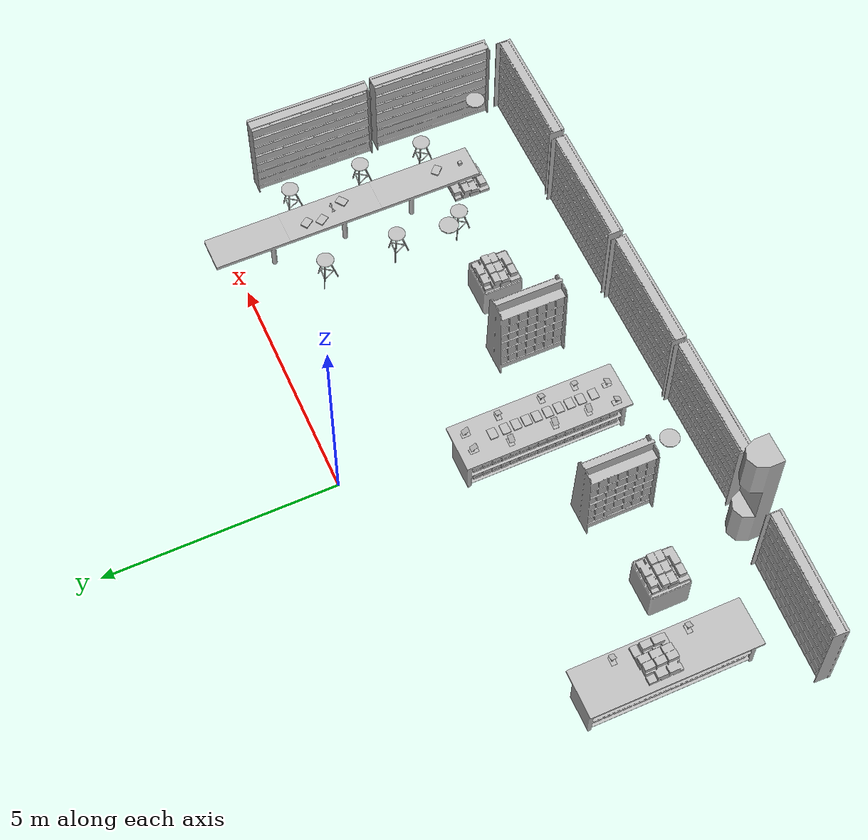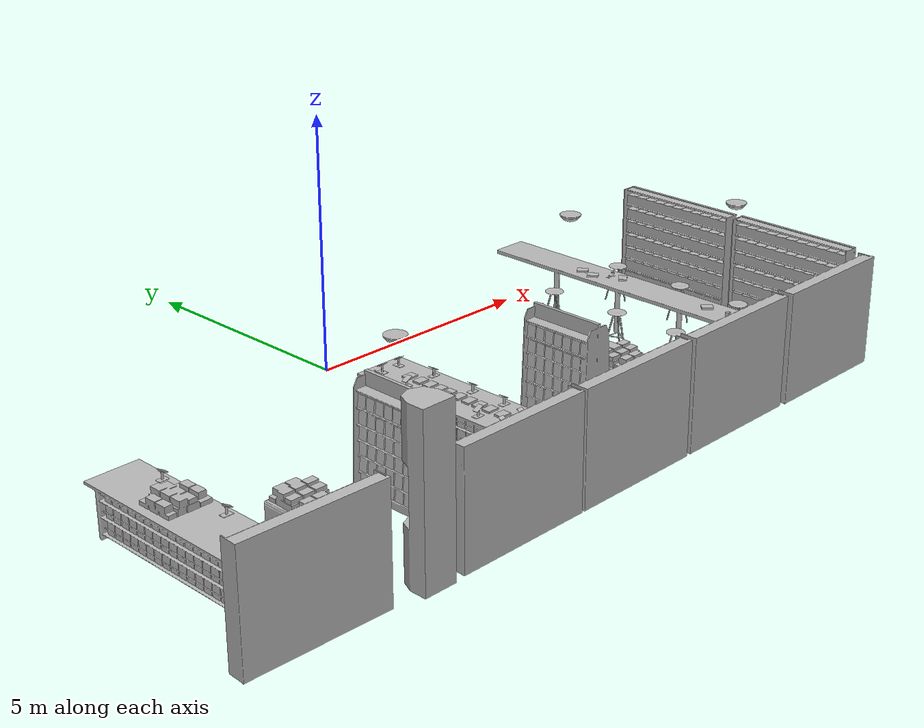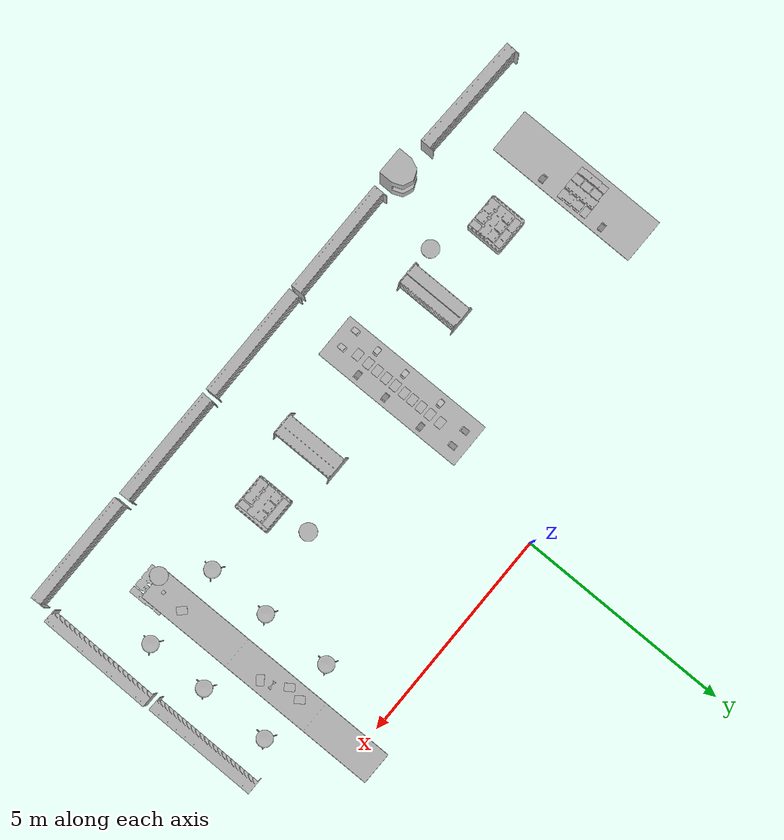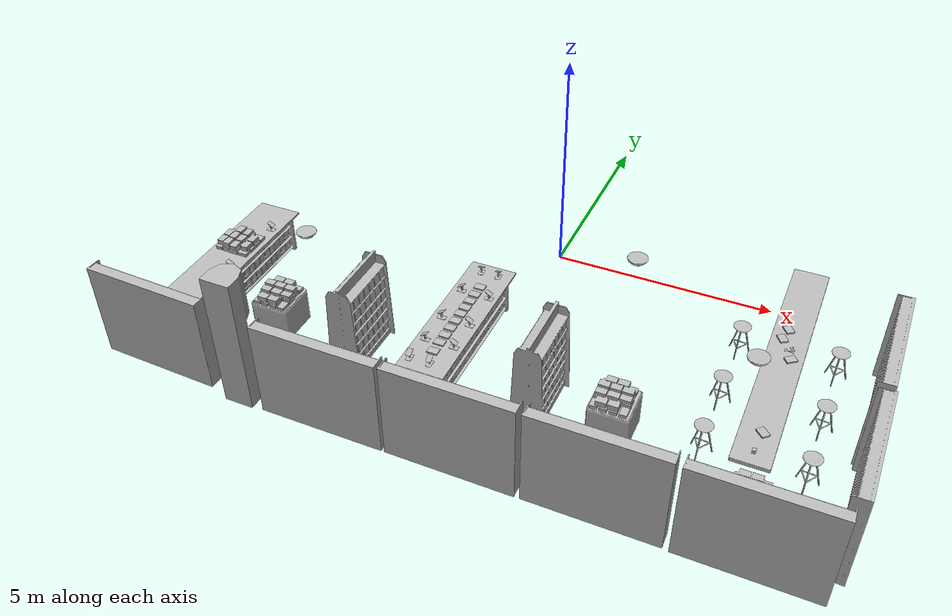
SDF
<sdf version="1.6">
 <world name="default">
  <model name="Bicycle_01_001">
   <include><uri>model://aws_robomaker_retail_Bicycle_01</uri></include>
   <pose>5.681248 -2.242451 0.931246 0.000002 -0.000024 0</pose>
  </model>
  <model name="BookE_01_001">
   <include><uri>model://aws_robomaker_retail_BookE_01</uri></include>
   <pose>5.476534 -1.932532 0.948933 0.000004 0.000001 -2.543521</pose>
  </model>
  <model name="BookE_01_004">
   <include><uri>model://aws_robomaker_retail_BookE_01</uri></include>
   <pose>5.677231 -4.649203 0.946394 0.000100 0.000006 -2.355752</pose>
  </model>
  <model name="BookE_01_005">
   <include><uri>model://aws_robomaker_retail_BookE_01</uri></include>
   <pose>5.538150 -1.610317 0.948933 0 0 -2.526901</pose>
  </model>
  <model name="BookE_01_011">
   <include><uri>model://aws_robomaker_retail_BookE_01</uri></include>
   <pose>5.749231 -2.492018 0.948933 0.000002 0.000001 2.223394</pose>
  </model>
  <model name="BookE_01_020">
   <include><uri>model://aws_robomaker_retail_BookE_01</uri></include>
   <pose>-0.694312 -3.530823 1.053825 0.000004 -0.000004 -1.573382</pose>
  </model>
  <model name="BookE_01_021">
   <include><uri>model://aws_robomaker_retail_BookE_01</uri></include>
   <pose>-0.694312 -3.760511 1.053825 0.000004 -0.000004 -1.573382</pose>
  </model>
  <model name="BookE_01_022">
   <include><uri>model://aws_robomaker_retail_BookE_01</uri></include>
   <pose>-0.694312 -3.980472 1.053825 0.000004 -0.000004 -1.573382</pose>
  </model>
  <model name="BookE_01_023">
   <include><uri>model://aws_robomaker_retail_BookE_01</uri></include>
   <pose>-0.694312 -4.221891 1.053825 0.000004 -0.000004 -1.573382</pose>
  </model>
  <model name="BookE_01_024">
   <include><uri>model://aws_robomaker_retail_BookE_01</uri></include>
   <pose>-0.694312 -4.461891 1.053825 0.000004 -0.000004 -1.573382</pose>
  </model>
  <model name="BookE_01_025">
   <include><uri>model://aws_robomaker_retail_BookE_01</uri></include>
   <pose>-0.694312 -4.701891 1.053825 0.000004 -0.000004 -1.573382</pose>
  </model>
  <model name="BookE_01_026">
   <include><uri>model://aws_robomaker_retail_BookE_01</uri></include>
   <pose>-0.694312 -4.941891 1.053825 0.000004 -0.000004 -1.573382</pose>
  </model>
  <model name="BookE_01_027">
   <include><uri>model://aws_robomaker_retail_BookE_01</uri></include>
   <pose>-0.694312 -5.221891 1.053825 0.000004 -0.000004 -1.573382</pose>
  </model>
  <model name="BookE_01_028">
   <include><uri>model://aws_robomaker_retail_BookE_01</uri></include>
   <pose>-0.694312 -3.291891 1.053825 0.000004 -0.000004 -1.573382</pose>
  </model>
  <model name="BookE_01_029">
   <include><uri>model://aws_robomaker_retail_BookE_01</uri></include>
   <pose>-0.694312 -3.021891 1.053825 0.000004 -0.000004 -1.573382</pose>
  </model>
  <model name="BookD_01_001">
   <include><uri>model://aws_robomaker_retail_BookD_01</uri></include>
   <pose>5.720048 -5.365876 0.022179 0.003452 -0.000001 0.000652</pose>
  </model>
  <model name="BookF_01_002">
   <include><uri>model://aws_robomaker_retail_BookF_01</uri></include>
   <pose>2.902979 -4.760748 0.75826 0.003450 0.000006 -0.002250</pose>
  </model>
  <model name="BookF_01_003">
   <include><uri>model://aws_robomaker_retail_BookF_01</uri></include>
   <pose>-4.604931 -4.772141 0.804483 0.000004 0 0</pose>
  </model>
  <model name="BookD_01_003">
   <include><uri>model://aws_robomaker_retail_BookD_01</uri></include>
   <pose>-6.235609 -3.785181 1.038157 0.000008 0 1.580378</pose>
  </model>
  <model name="BookshelfA_01_002">
   <include><uri>model://aws_robomaker_retail_BookshelfA_01</uri></include>
   <pose>1.405153 -4.761649 0.003411 0 0 0</pose>
  </model>
  <model name="BookshelfA_01_004">
   <include><uri>model://aws_robomaker_retail_BookshelfA_01</uri></include>
   <pose>-2.608578 -4.761649 0.003411 0 0 0</pose>
  </model>
  <model name="BookshelfB_01_001">
   <include><uri>model://aws_robomaker_retail_BookshelfB_01</uri></include>
   <pose>-6.189675 -6.785646 -0.008942 0.003533 0.000121 -0.032073</pose>
  </model>
  <model name="BookshelfB_01_002">
   <include><uri>model://aws_robomaker_retail_BookshelfB_01</uri></include>
   <pose>-2.209411 -6.971459 0.017074 -0.000128 -0.000252 0.000364</pose>
  </model>
  <model name="BookshelfB_01_003">
   <include><uri>model://aws_robomaker_retail_BookshelfB_01</uri></include>
   <pose>0.522246 -6.971500 0.017947 -0.003292 0.000000 0.000000</pose>
  </model>
  <model name="BookshelfB_01_004">
   <include><uri>model://aws_robomaker_retail_BookshelfB_01</uri></include>
   <pose>3.293386 -6.963665 0.017383 0.000008 -0.000002 0.000000</pose>
  </model>
  <model name="BookshelfB_01_005">
   <include><uri>model://aws_robomaker_retail_BookshelfB_01</uri></include>
   <pose>6.080380 -6.987659 0.017409 0.000174 0.000004 0.000000</pose>
  </model>
  <model name="BookshelfB_01_006">
   <include><uri>model://aws_robomaker_retail_BookshelfB_01</uri></include>
   <pose>7.478331 -5.298296 0.017443 -0.001974 -0.000211 1.554057</pose>
  </model>
  <model name="BookshelfB_01_007">
   <include><uri>model://aws_robomaker_retail_BookshelfB_01</uri></include>
   <pose>7.478331 -2.510651 0.017402 0.000010 -0.000013 1.562068</pose>
  </model>
  <model name="BookshelfC_01_002">
   <include><uri>model://aws_robomaker_retail_BookshelfC_01</uri></include>
   <pose>2.915449 -4.761712 -0.003455 0.003452 0 0.000014</pose>
  </model>
  <model name="BookshelfC_01_004">
   <include><uri>model://aws_robomaker_retail_BookshelfC_01</uri></include>
   <pose>-4.614360 -4.761649 0.045908 0 0 0</pose>
  </model>
  <model name="ChairB_01_002">
   <include><uri>model://aws_robomaker_retail_ChairB_01</uri></include>
   <pose>6.6439554 -1.621987 0.0220513 0 0.006174 0.000088</pose>
  </model>
  <model name="ChairB_01_003">
   <include><uri>model://aws_robomaker_retail_ChairB_01</uri></include>
   <pose>6.6439554 -3.246633 0.0220513 0 0.006174 0.000088</pose>
  </model>
  <model name="ChairB_01_004">
   <include><uri>model://aws_robomaker_retail_ChairB_01</uri></include>
   <pose>6.6439554 -4.681600 0.0220513 0 0.006174 0.000088</pose>
  </model>
  <model name="ChairB_01_006">
   <include><uri>model://aws_robomaker_retail_ChairB_01</uri></include>
   <pose>4.653303 -1.621987 0.0220513 0 0.006174 0.000088</pose>
  </model>
  <model name="ChairB_01_007">
   <include><uri>model://aws_robomaker_retail_ChairB_01</uri></include>
   <pose>4.653303 -3.246633 0.0220513 0 0.006174 0.000088</pose>
  </model>
  <model name="ChairB_01_008">
   <include><uri>model://aws_robomaker_retail_ChairB_01</uri></include>
   <pose>4.653303 -4.681600 0.0220513 0 0.006174 0.000088</pose>
  </model>
  <model name="ColumnB_01_002">
   <include><uri>model://aws_robomaker_retail_ColumnB_01</uri></include>
   <pose>-4.076233 -6.860710 0.017511 0.001895 -0.000628 -0.003755</pose>
  </model>
  <model name="DeskB_01_001">
   <include><uri>model://aws_robomaker_retail_DeskB_01</uri></include>
   <pose>5.622942 -2.475419 -0.181282 0 -0 0</pose>
  </model>
  <model name="DeskA_01_003">
   <include><uri>model://aws_robomaker_retail_DeskA_01</uri></include>
   <pose>-6.254654 -3.979197 -0.004603 0.001948 0.001361 -1.569567</pose>
  </model>
  <model name="DeskA_01_004">
   <include><uri>model://aws_robomaker_retail_DeskA_01</uri></include>
   <pose>-0.701688 -4.049294 0.014866 0.000000 -0.000000 -1.566097</pose>
  </model>
  <model name="TabletB_01_001">
   <include><uri>model://aws_robomaker_retail_TabletB_01</uri></include>
   <pose>-0.887658 -2.526304 1.181088 0.534314 -0.007303 -3.125039</pose>
  </model>
  <model name="TabletB_01_002">
   <include><uri>model://aws_robomaker_retail_TabletB_01</uri></include>
   <pose>-0.490858 -2.526304 1.181088 0.534314 -0.007303 -3.125039</pose>
  </model>
  <model name="TabletB_01_003">
   <include><uri>model://aws_robomaker_retail_TabletB_01</uri></include>
   <pose>-0.598457 -5.570730 1.184718 0.550862 -0.007302 0.000000</pose>
  </model>
  <model name="TabletB_01_004">
   <include><uri>model://aws_robomaker_retail_TabletB_01</uri></include>
   <pose>-1.036580 -5.570730 1.184718 0.550862 -0.007302 0.000000</pose>
  </model>
  <model name="TabletB_01_005">
   <include><uri>model://aws_robomaker_retail_TabletB_01</uri></include>
   <pose>-0.378561 -4.954985 1.184718 0.518383 0.023342 1.564514</pose>
  </model>
  <model name="TabletB_01_006">
   <include><uri>model://aws_robomaker_retail_TabletB_01</uri></include>
   <pose>-0.378561 -4.227170 1.184718 0.518383 0.023342 1.564514</pose>
  </model>
  <model name="TabletB_01_007">
   <include><uri>model://aws_robomaker_retail_TabletB_01</uri></include>
   <pose>-0.378561 -3.280550 1.184718 0.518383 0.023342 1.564514</pose>
  </model>
  <model name="TabletB_01_008">
   <include><uri>model://aws_robomaker_retail_TabletB_01</uri></include>
   <pose>-1.003855 -4.964849 1.184718 0.512461 -0.058405 -1.604103</pose>
  </model>
  <model name="TabletB_01_009">
   <include><uri>model://aws_robomaker_retail_TabletB_01</uri></include>
   <pose>-1.003855 -4.224020 1.184718 0.512461 -0.058405 -1.604103</pose>
  </model>
  <model name="TabletB_01_010">
   <include><uri>model://aws_robomaker_retail_TabletB_01</uri></include>
   <pose>-1.003855 -3.275521 1.184718 0.512461 -0.058405 -1.604103</pose>
  </model>
  <model name="TabletB_01_011">
   <include><uri>model://aws_robomaker_retail_TabletB_01</uri></include>
   <pose>-5.915050 -3.031740 1.184718 0.518384 0.023341 1.564511</pose>
  </model>
  <model name="TabletB_01_012">
   <include><uri>model://aws_robomaker_retail_TabletB_01</uri></include>
   <pose>-5.915050 -4.612402 1.184718 0.518384 0.023341 1.564511</pose>
  </model>
  <model name="Holder_01_001">
   <include><uri>model://aws_robomaker_retail_Holder_01</uri></include>
   <pose>-0.599181 -5.571190 1.037756 0 -0 0</pose>
  </model>
  <model name="Holder_01_002">
   <include><uri>model://aws_robomaker_retail_Holder_01</uri></include>
   <pose>-0.491632 -2.528687 1.037756 0 -0 -3.130149</pose>
  </model>
  <model name="Holder_01_003">
   <include><uri>model://aws_robomaker_retail_Holder_01</uri></include>
   <pose>-1.035840 -5.571191 1.037756 0 -0 0</pose>
  </model>
  <model name="Holder_01_004">
   <include><uri>model://aws_robomaker_retail_Holder_01</uri></include>
   <pose>-0.886180 -2.529685 1.037756 0 -0 -3.130149</pose>
  </model>
  <model name="Holder_01_013">
   <include><uri>model://aws_robomaker_retail_Holder_01</uri></include>
   <pose>-0.372529 -4.960362 1.037756 0 -0 1.550000</pose>
  </model>
  <model name="Holder_01_014">
   <include><uri>model://aws_robomaker_retail_Holder_01</uri></include>
   <pose>-0.372529 -4.226824 1.037756 0 -0 1.550000</pose>
  </model>
  <model name="Holder_01_015">
   <include><uri>model://aws_robomaker_retail_Holder_01</uri></include>
   <pose>-0.372529 -3.286318 1.037756 0 -0 1.550000</pose>
  </model>
  <model name="Holder_01_016">
   <include><uri>model://aws_robomaker_retail_Holder_01</uri></include>
   <pose>-1.001700 -4.961520 1.037756 0 0 -1.588645</pose>
  </model>
  <model name="Holder_01_017">
   <include><uri>model://aws_robomaker_retail_Holder_01</uri></include>
   <pose>-1.001700 -4.226100 1.037756 0 0 -1.588645</pose>
  </model>
  <model name="Holder_01_018">
   <include><uri>model://aws_robomaker_retail_Holder_01</uri></include>
   <pose>-1.001700 -3.269130 1.037756 0 0 -1.588645</pose>
  </model>
  <model name="Holder_01_019">
   <include><uri>model://aws_robomaker_retail_Holder_01</uri></include>
   <pose>-5.929110 -3.032790 1.037756 0 -0 1.550000</pose>
  </model>
  <model name="Holder_01_020">
   <include><uri>model://aws_robomaker_retail_Holder_01</uri></include>
   <pose>-5.929110 -4.603640 1.037756 0 -0 1.550000</pose>
  </model>
  <model name="LightA_01_001">
   <include><uri>model://aws_robomaker_retail_LightA_01</uri></include>
   <pose>2.774418 -3.628150 3.150329 0 -0 0</pose>
  </model>
  <model name="LightA_01_002">
   <include><uri>model://aws_robomaker_retail_LightA_01</uri></include>
   <pose>5.383991 -5.383710 3.150328 0 -0 0</pose>
  </model>
  <model name="LightA_01_004">
   <include><uri>model://aws_robomaker_retail_LightA_01</uri></include>
   <pose>-3.210668 -5.383710 3.150328 0 -0 0</pose>
  </model>
  <model name="MagicCube_01_001">
   <include><uri>model://aws_robomaker_retail_MagicCube_01</uri></include>
   <pose>5.667560 -5.174908 0.968597 1.559939 -0.000001 -1.555409</pose>
  </model>
 </world>
</sdf>
